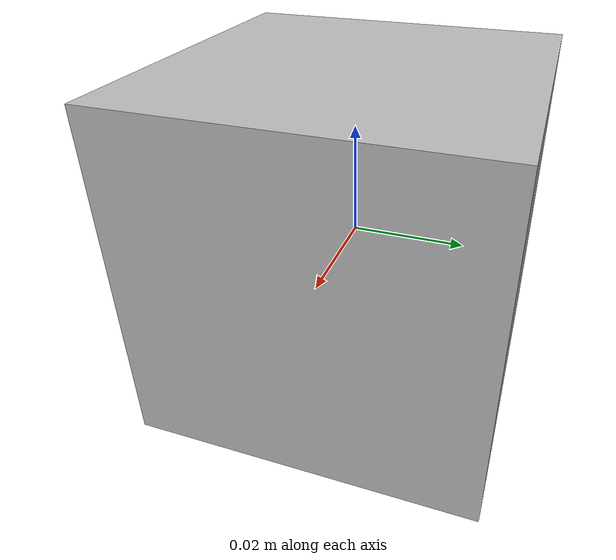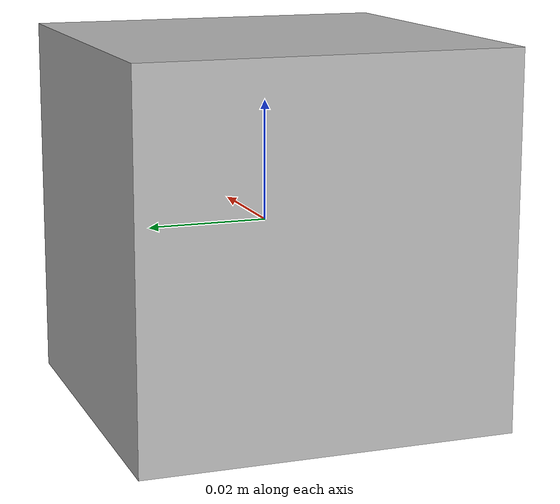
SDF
<?xml version="1.0"?>
<sdf version="1.7">
  <model name="tray">

    <link name="front_left_support">
    <collision name="front_left_support">
        <geometry>
          <sphere>
            <radius>0.001</radius>
          </sphere>
        </geometry>
        <pose>0.03075 -0.03075 -0.03075 0 0 0</pose>
    </collision>
    </link>

    <link name="front_right_support">
    <collision name="front_right_support">
        <geometry>
          <sphere>
            <radius>0.001</radius>
          </sphere>
        </geometry>
        <pose>0.03075 0.03075 -0.03075 0 0 0</pose>
      </collision>
    </link>

    <link name="back_left_support">
    <collision name="back_left_support">
        <geometry>
          <sphere>
            <radius>0.001</radius>
          </sphere>
        </geometry>
        <pose>-0.03075 -0.03075 -0.03075 0 0 0</pose>
      </collision>
    </link>

    <link name="back_right_support">
    <collision name="back_right_support">
        <geometry>
          <sphere>
            <radius>0.001</radius>
          </sphere>
        </geometry>
        <pose>-0.03075 0.03075 -0.03075 0 0 0</pose>
      </collision>
    </link>

    <link name="front_left_top">
    <collision name="front_left_top">
        <geometry>
          <sphere>
            <radius>0.001</radius>
          </sphere>
        </geometry>
        <pose>0.03075 -0.03075 0.03075 0 0 0</pose>
      </collision>
    </link>

    <link name="front_right_top">
      <collision name="front_right_top">
        <geometry>
          <sphere>
            <radius>0.001</radius>
          </sphere>
        </geometry>
        <pose>0.03075 0.03075 0.03075 0 0 0</pose>
      </collision>
    </link>

    <link name="back_left_top">
    <collision name="back_left_top">
        <geometry>
          <sphere>
            <radius>0.001</radius>
          </sphere>
        </geometry>
        <pose>-0.03075 -0.03075 0.03075 0 0 0</pose>
      </collision>
    </link>

    <link name="back_right_top">
    <collision name="back_right_top">
        <geometry>
          <sphere>
            <radius>0.001</radius>
          </sphere>
        </geometry>
        <pose>-0.03075 0.03075 0.03075 0 0 0</pose>
      </collision>
    </link>

    <link name="cube">
      <inertial>
        <mass>0.132</mass>
        <!-- Inertia values were calculated to be consistent with the mass and
             geometry size, assuming a uniform density. -->
        <inertia>
          <ixx>0.000083209</ixx>
          <ixy>0</ixy>
          <ixz>0</ixz>
          <iyy>0.000083209</iyy>
          <iyz>0</iyz>
          <izz>0.000083209</izz>
        </inertia>
      </inertial>
      <visual name="cube">
        <geometry>
          <box>
            <size>0.0615 0.0615 0.0615</size>
          </box>
        </geometry>
      </visual>
      <collision name="volume">
            <geometry>
          <box>
            <size>0.0615 0.0615 0.0615</size>
          </box>
        </geometry>
      </collision>
    </link>

    <!-- Define the fixed joints connecting each sphere to the cube -->
    <joint name="front_left_support_joint" type="fixed">
      <!-- Parent and child links for the joint -->
      <parent>cube</parent>
      <child>front_left_support</child>
      <!-- Pose of the joint relative to the parent link -->
      <pose>0.03075 -0.03075 -0.03075 0 0 0</pose>
    </joint>

    <joint name="front_right_support_joint" type="fixed">
      <!-- Parent and child links for the joint -->
      <parent>cube</parent>
      <child>front_right_support</child>
      <!-- Pose of the joint relative to the parent link -->
      <pose>0.03075 0.03075 -0.03075 0 0 0</pose>
    </joint>

    <joint name="back_left_support_joint" type="fixed">
      <!-- Parent and child links for the joint -->
      <parent>cube</parent>
      <child>back_left_support</child>
      <!-- Pose of the joint relative to the parent link -->
      <pose>-0.03075 -0.03075 -0.03075 0 0 0</pose>
    </joint>

    <joint name="back_right_support_joint" type="fixed">
      <!-- Parent and child links for the joint -->
      <parent>cube</parent>
      <child>back_right_support</child>
      <!-- Pose of the joint relative to the parent link -->
      <pose>-0.03075 0.03075 -0.03075 0 0 0</pose>
    </joint>

    <joint name="front_left_top_joint" type="fixed">
      <!-- Parent and child links for the joint -->
      <parent>cube</parent>
      <child>front_left_top</child>
      <!-- Pose of the joint relative to the parent link -->
      <pose>0.03075 -0.03075 0.03075 0 0 0</pose>
    </joint>

    <joint name="front_right_top_joint" type="fixed">
      <!-- Parent and child links for the joint -->
      <parent>cube</parent>
      <child>front_right_top</child>
      <!-- Pose of the joint relative to the parent link -->
      <pose>0.03075 0.03075 0.03075 0 0 0</pose>
    </joint>

    <joint name="back_left_top_joint" type="fixed">
      <!-- Parent and child links for the joint -->
      <parent>cube</parent>
      <child>back_left_top</child>
      <!-- Pose of the joint relative to the parent link -->
       <pose>-0.03075 -0.03075 0.03075 0 0 0</pose>
    </joint>

    <joint name="back_right_top_joint" type="fixed">
      <!-- Parent and child links for the joint -->
      <parent>cube</parent>
      <child>back_right_top</child>
      <!-- Pose of the joint relative to the parent link -->
       <pose>-0.03075 0.03075 0.03075 0 0 0</pose>
    </joint>

  </model>
</sdf>
